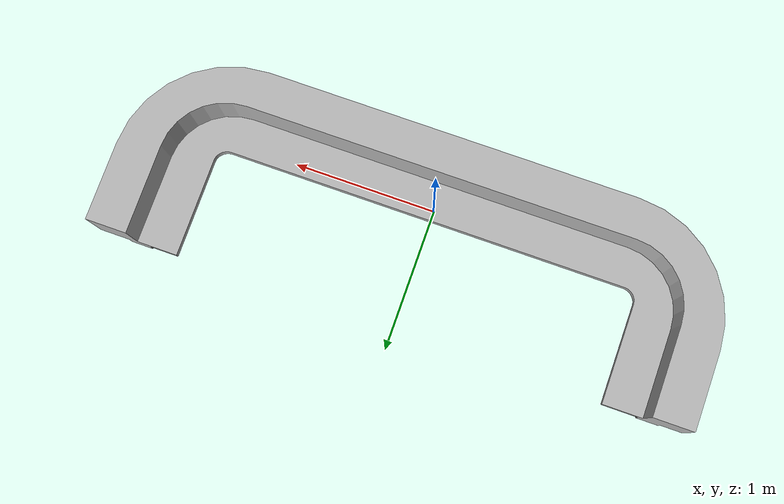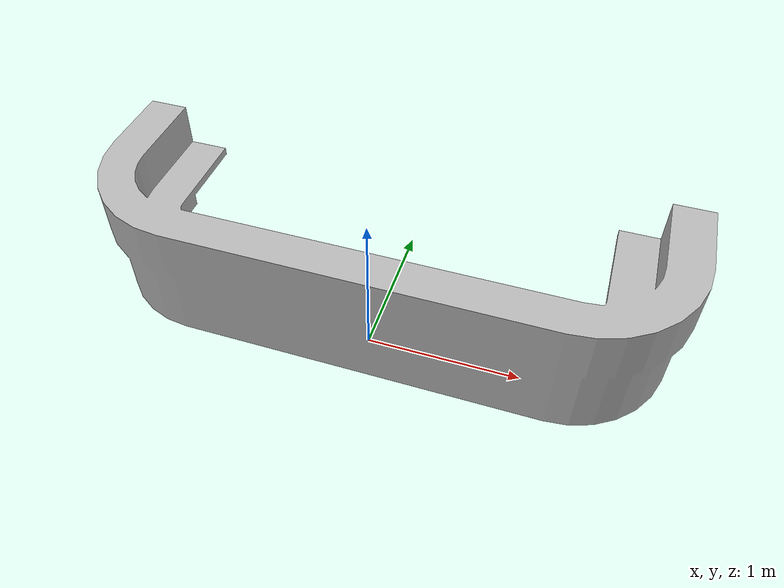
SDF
<?xml version="1.0"?>

<sdf version="1.6">
  <model name='NurseDesk'>
    <static>true</static>
    <link name="body">
      <pose>0 0 0 0 0 0</pose>
      <visual name="visual">
        <geometry>
          <mesh>
            <uri>model://NurseDesk/meshes/NurseDesk.obj</uri>
            <scale>0.0008 0.0008 0.0008</scale>
          </mesh>
        </geometry>
      </visual>
      <collision name="collision">
        <geometry>
          <mesh>
            <uri>model://NurseDesk/meshes/NurseDesk.obj</uri>
            <scale>0.0008 0.0008 0.0008</scale>
          </mesh>
        </geometry>
      </collision>
    </link>
  </model>
</sdf>
